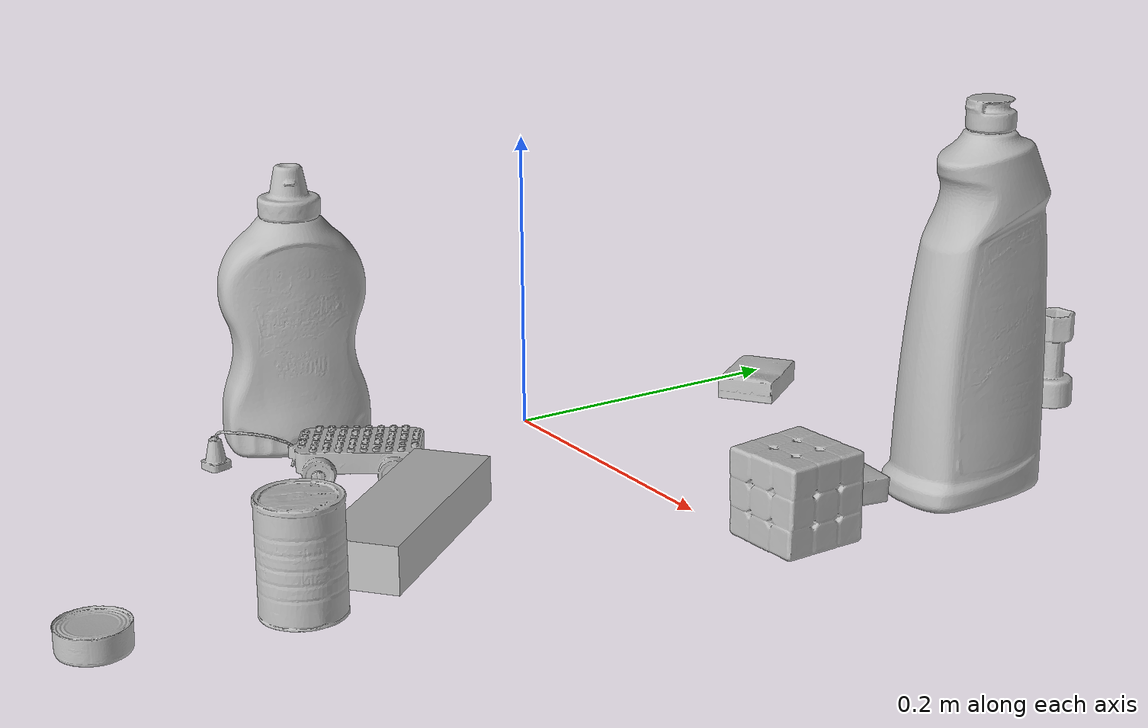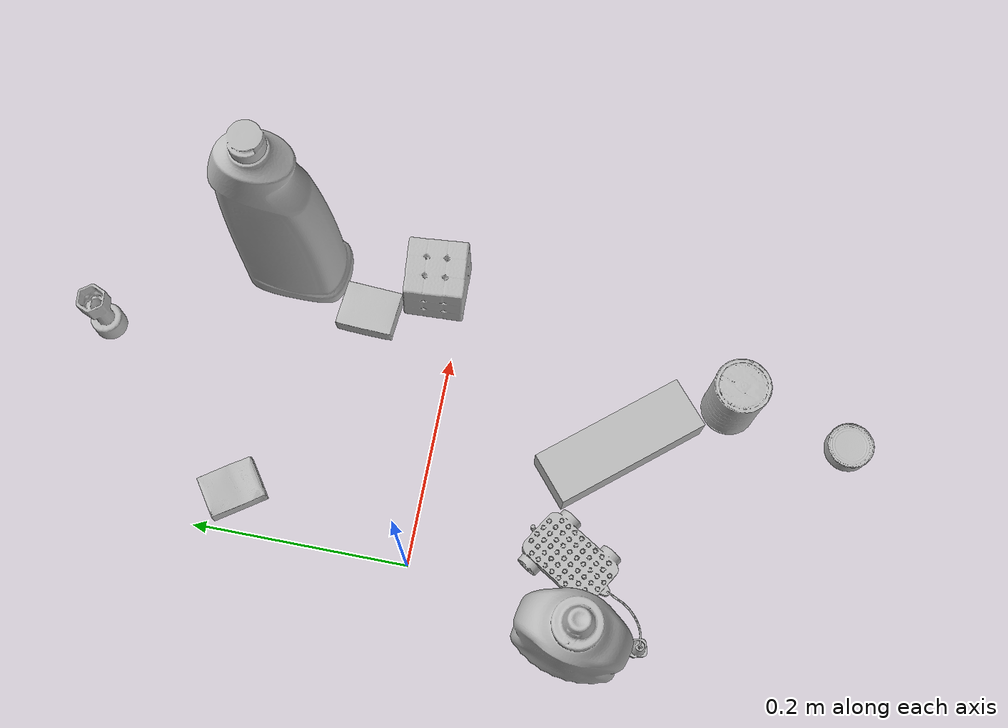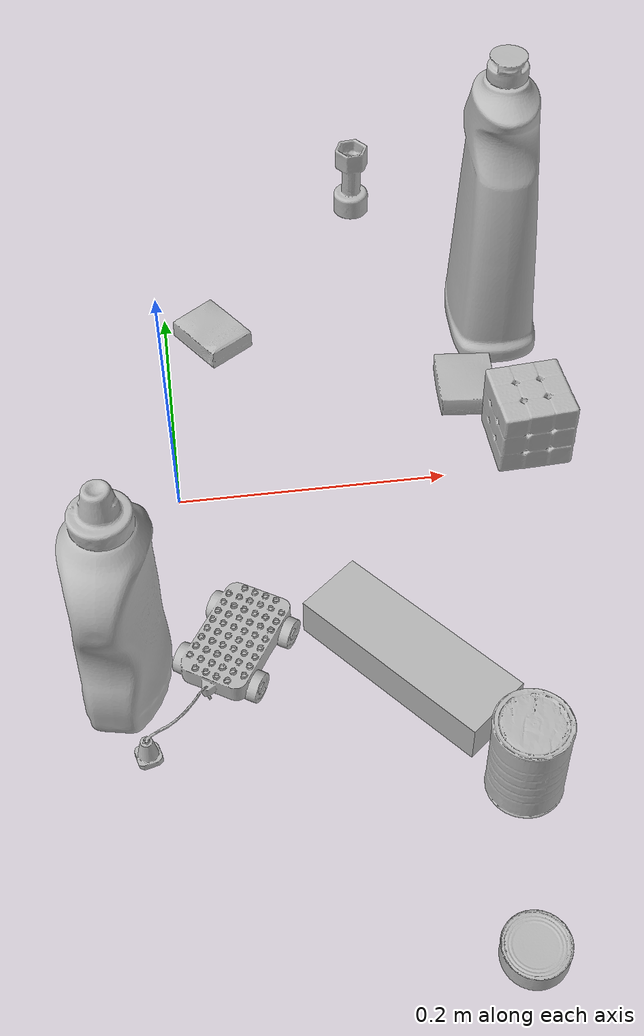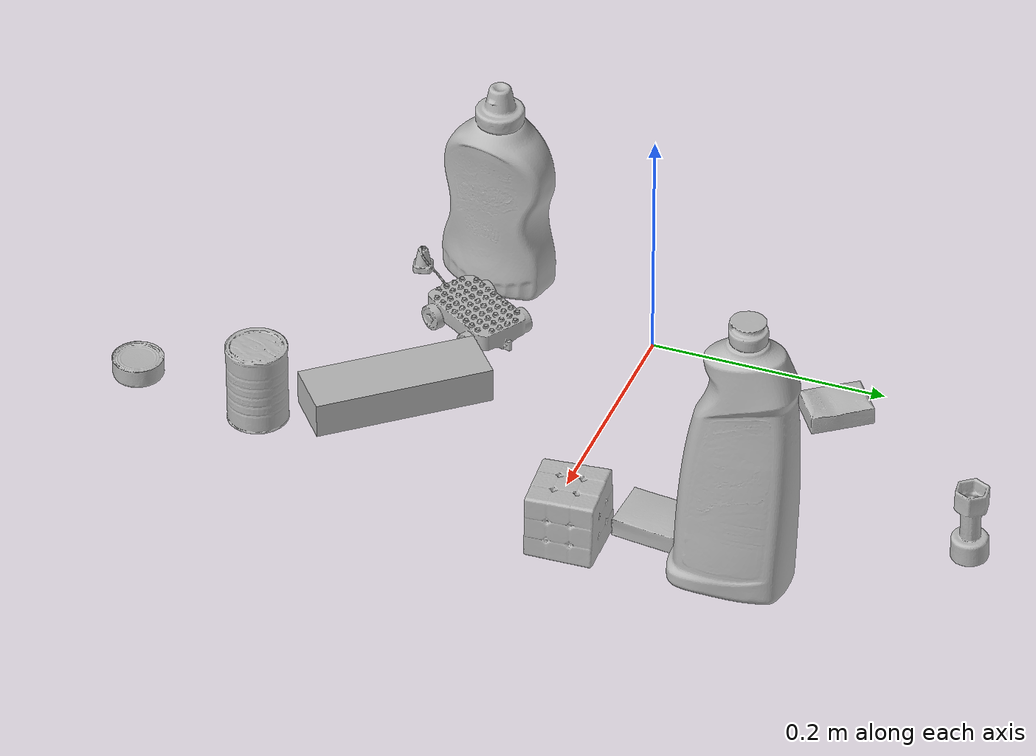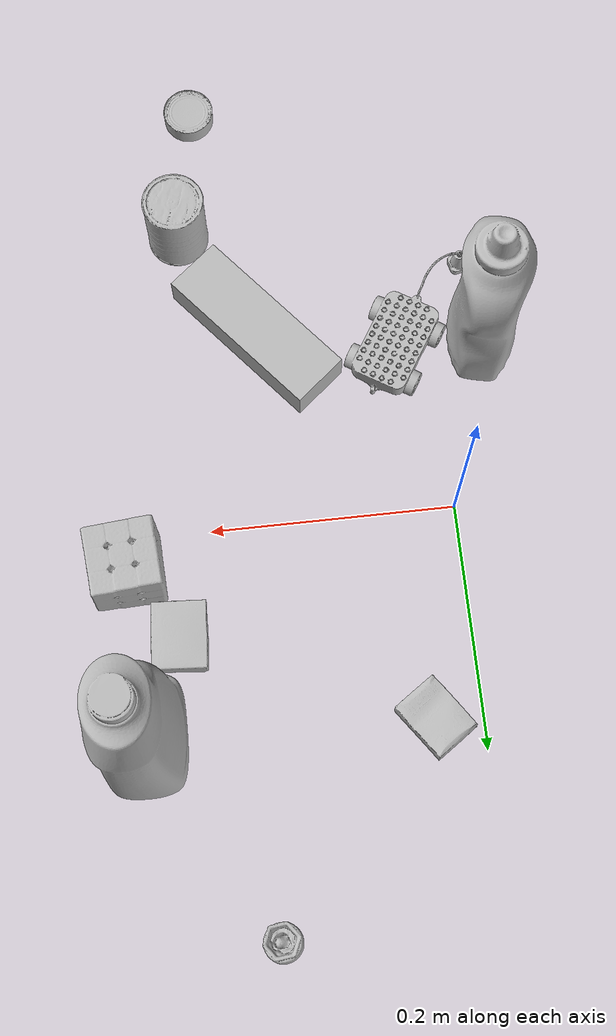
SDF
<sdf version="1.4">
  <world name="default">
    <light name="light1" type="point">
      <pose>0 0 1 0 0 0</pose>
      <diffuse>3 3 3 1</diffuse>
      <specular>3 3 3 1</specular>
    </light>
    <light name="light2" type="point">
      <pose>0 0.5 2 0 0 0</pose>
      <diffuse>1 1 1 1</diffuse>
      <specular>1 1 1 1</specular>
    </light>
    <light name="light3" type="point">
      <pose>0 0.5 2 0 0 0</pose>
      <diffuse>3 3 3 1</diffuse>
      <specular>3 3 3 1</specular>
    </light>
    <scene>
      <ambient>0.7 0.7 0.7</ambient>
    </scene>
    <model name="bottle1">
      <link name="link_bottle1">
        <collision name="default">
          <geometry>
            <mesh>
              <uri>model://mustard_bottle/collision_meshes/collision.obj</uri>
              <scale>1.0 1.0 1.0</scale>
            </mesh>
          </geometry>
          <surface>
            <friction>
              <ode>
                <mu>0.5</mu>
                <mu2>0.5</mu2>
              </ode>
            </friction>
          <contact>
        <ode>
            <max_vel>0</max_vel>
            <min_depth>0.0001</min_depth>
            <kp>1e8</kp>
        </ode>
    </contact></surface>
        </collision>
        <visual name="default">
          <geometry>
            <mesh>
              <uri>model://mustard_bottle/visual_meshes/visual.dae</uri>
              <scale>1.0 1.0 1.0</scale>
            </mesh>
          </geometry>
        </visual>
        <inertial>
          <mass>0.7866348028182983</mass>
          <pose>0.0005032454500906169 -0.00015647400869056582 -0.0174757931381464 0.00041823249995057767 0.0009465787698991903 0.02485370186883952</pose>
          <inertia>
            <ixx>0.0021843775</ixx>
            <iyy>0.0019166061</iyy>
            <izz>0.0005756938</izz>
            <ixy>0</ixy>
            <ixz>0</ixz>
            <iyz>0</iyz>
          </inertia>
        </inertial>
      </link>
      <pose>-0.043491773307323456 -0.15065155923366547 0.09583088755607605 -0.012048007900495237 -0.004896947182216766 -0.23118205857435112</pose>
    </model>
    <model name="bottle2">
      <link name="link_bottle2">
        <collision name="default">
          <geometry>
            <mesh>
              <uri>model://bleach_cleanser/collision_meshes/collision.obj</uri>
              <scale>1.0 1.0 1.0</scale>
            </mesh>
          </geometry>
          <surface>
            <friction>
              <ode>
                <mu>0.5</mu>
                <mu2>0.5</mu2>
              </ode>
            </friction>
          <contact>
        <ode>
            <max_vel>0</max_vel>
            <min_depth>0.0001</min_depth>
            <kp>1e8</kp>
        </ode>
    </contact></surface>
        </collision>
        <visual name="default">
          <geometry>
            <mesh>
              <uri>model://bleach_cleanser/visual_meshes/visual.dae</uri>
              <scale>1.0 1.0 1.0</scale>
            </mesh>
          </geometry>
        </visual>
        <inertial>
          <mass>1.5776710510253906</mass>
          <pose>0.00012193183647468686 0.003783883061259985 -0.02442161552608013 -0.07381671362264838 0.0004201168949340897 -0.006875045535038288</pose>
          <inertia>
            <ixx>0.007678755</ixx>
            <iyy>0.0071554743</iyy>
            <izz>0.0013128674</izz>
            <ixy>0</ixy>
            <ixz>0</ixz>
            <iyz>0</iyz>
          </inertia>
        </inertial>
      </link>
      <pose>0.26585686206817627 0.16293004155158997 0.12578417360782623 -0.0001997359533779914 1.6737407752938784e-05 0.011374051107111476</pose>
    </model>
    <model name="toy1">
      <link name="link_toy1">
        <collision name="default">
          <geometry>
            <mesh>
              <uri>model://g_lego_duplo/collision_meshes/collision.obj</uri>
              <scale>0.5 0.5 0.5</scale>
            </mesh>
          </geometry>
          <surface>
            <friction>
              <ode>
                <mu>0.5</mu>
                <mu2>0.5</mu2>
              </ode>
            </friction>
          <contact>
        <ode>
            <max_vel>0</max_vel>
            <min_depth>0.0001</min_depth>
            <kp>1e8</kp>
        </ode>
    </contact></surface>
        </collision>
        <visual name="default">
          <geometry>
            <mesh>
              <uri>model://g_lego_duplo/visual_meshes/visual.dae</uri>
              <scale>0.5 0.5 0.5</scale>
            </mesh>
          </geometry>
        </visual>
        <inertial>
          <mass>0.06580430269241333</mass>
          <pose>-0.025023844093084335 0.0008777321199886501 0.0019403373589739203 0.010962977320182745 0.038108249742412996 -0.09653031078073558</pose>
          <inertia>
            <ixx>2.3837789e-05</ixx>
            <iyy>7.206929e-05</iyy>
            <izz>9.016138e-05</izz>
            <ixy>0</ixy>
            <ixz>0</ixz>
            <iyz>0</iyz>
          </inertia>
        </inertial>
      </link>
      <pose>0.013763866387307644 -0.16681678593158722 0.014971824362874031 -0.0001739010062999382 -0.003706401360851459 -2.133004664217744</pose>
    </model>
    <model name="toy2">
      <link name="link_toy2">
        <collision name="default">
          <geometry>
            <mesh>
              <uri>model://c_toy_airplane/collision_meshes/collision.obj</uri>
              <scale>1.0 1.0 1.0</scale>
            </mesh>
          </geometry>
          <surface>
            <friction>
              <ode>
                <mu>0.5</mu>
                <mu2>0.5</mu2>
              </ode>
            </friction>
          <contact>
        <ode>
            <max_vel>0</max_vel>
            <min_depth>0.0001</min_depth>
            <kp>1e8</kp>
        </ode>
    </contact></surface>
        </collision>
        <visual name="default">
          <geometry>
            <mesh>
              <uri>model://c_toy_airplane/visual_meshes/visual.dae</uri>
              <scale>1.0 1.0 1.0</scale>
            </mesh>
          </geometry>
        </visual>
        <inertial>
          <mass>0.012545601464807987</mass>
          <pose>-0.00023024262918625027 -4.4310368707556336e-07 -0.0060805282555520535 -0.006192226732466636 -0.01679790977646328 0.7654621556572541</pose>
          <inertia>
            <ixx>5.760684e-06</ixx>
            <iyy>5.744425e-06</iyy>
            <izz>1.3524945e-06</izz>
            <ixy>0</ixy>
            <ixz>0</ixz>
            <iyz>0</iyz>
          </inertia>
        </inertial>
      </link>
      <pose>0.17423374950885773 0.3279401361942291 0.03351213410496712 -0.00011028320190297424 9.279422261265514e-05 -2.730312685081734</pose>
    </model>
    <model name="can1">
      <link name="link_can1">
        <collision name="default">
          <geometry>
            <mesh>
              <uri>model://tuna_fish_can/collision_meshes/collision.obj</uri>
              <scale>0.5 0.5 0.5</scale>
            </mesh>
          </geometry>
          <surface>
            <friction>
              <ode>
                <mu>0.5</mu>
                <mu2>0.5</mu2>
              </ode>
            </friction>
          <contact>
        <ode>
            <max_vel>0</max_vel>
            <min_depth>0.0001</min_depth>
            <kp>1e8</kp>
        </ode>
    </contact></surface>
        </collision>
        <visual name="default">
          <geometry>
            <mesh>
              <uri>model://tuna_fish_can/visual_meshes/visual.dae</uri>
              <scale>0.5 0.5 0.5</scale>
            </mesh>
          </geometry>
        </visual>
        <inertial>
          <mass>0.0216250978410244</mass>
          <pose>-2.036200021393597e-05 -7.256498065544292e-06 -0.0005269024986773729 -0.0017944779234091367 0.00017161663308651613 0.24053681665098822</pose>
          <inertia>
            <ixx>2.923745e-06</ixx>
            <iyy>2.9115588e-06</iyy>
            <izz>5.002946e-06</izz>
            <ixy>0</ixy>
            <ixz>0</ixz>
            <iyz>0</iyz>
          </inertia>
        </inertial>
      </link>
      <pose>0.18480494618415833 -0.3785318434238434 0.008520000614225864 -1.8511080791469576e-08 -2.628761066683975e-08 1.33821786086828</pose>
    </model>
    <model name="can2">
      <link name="link_can2">
        <collision name="default">
          <geometry>
            <mesh>
              <uri>model://master_chef_can/collision_meshes/collision.obj</uri>
              <scale>0.5 0.5 0.5</scale>
            </mesh>
          </geometry>
          <surface>
            <friction>
              <ode>
                <mu>0.5</mu>
                <mu2>0.5</mu2>
              </ode>
            </friction>
          <contact>
        <ode>
            <max_vel>0</max_vel>
            <min_depth>0.0001</min_depth>
            <kp>1e8</kp>
        </ode>
    </contact></surface>
        </collision>
        <visual name="default">
          <geometry>
            <mesh>
              <uri>model://master_chef_can/visual_meshes/visual.dae</uri>
              <scale>0.5 0.5 0.5</scale>
            </mesh>
          </geometry>
        </visual>
        <inertial>
          <mass>0.16779577732086182</mass>
          <pose>-4.661964703700505e-05 1.3926845099376806e-07 -5.080012488178909e-05 -0.001799515621871614 0.0006479176547847844 -0.610266079213139</pose>
          <inertia>
            <ixx>9.848473e-05</ixx>
            <iyy>9.77599e-05</iyy>
            <izz>5.442035e-05</izz>
            <ixy>0</ixy>
            <ixz>0</ixz>
            <iyz>0</iyz>
          </inertia>
        </inertial>
      </link>
      <pose>0.20356802642345428 -0.2652052640914917 0.03530198335647583 -1.1825477984346787e-06 -8.620163613019154e-07 1.7265271477570725</pose>
    </model>
    <model name="box1">
      <link name="link_box1">
        <collision name="default">
          <geometry>
            <mesh>
              <uri>model://rubiks_cube/collision_meshes/collision.obj</uri>
              <scale>1.0 1.0 1.0</scale>
            </mesh>
          </geometry>
          <surface>
            <friction>
              <ode>
                <mu>0.5</mu>
                <mu2>0.5</mu2>
              </ode>
            </friction>
          <contact>
        <ode>
            <max_vel>0</max_vel>
            <min_depth>0.0001</min_depth>
            <kp>1e8</kp>
        </ode>
    </contact></surface>
        </collision>
        <visual name="default">
          <geometry>
            <mesh>
              <uri>model://rubiks_cube/visual_meshes/visual.dae</uri>
              <scale>1.0 1.0 1.0</scale>
            </mesh>
          </geometry>
        </visual>
        <inertial>
          <mass>0.232398122549057</mass>
          <pose>2.6721041649580002e-05 5.256967051536776e-05 -7.264316082000732e-06 -0.05467303663832053 -0.0981402329670775 -0.034454960240128486</pose>
          <inertia>
            <ixx>0.00012841556</ixx>
            <iyy>0.00012781669</iyy>
            <izz>0.00012947968</izz>
            <ixy>0</ixy>
            <ixz>0</ixz>
            <iyz>0</iyz>
          </inertia>
        </inertial>
      </link>
      <pose>0.2689465880393982 0.026638329029083252 0.02867897041141987 -2.560505667992258e-06 -8.857691992739117e-07 0.07472774317942303</pose>
    </model>
    <model name="box2">
      <link name="link_box2">
        <collision name="default">
          <geometry>
            <mesh>
              <uri>model://jenga/collision_meshes/collision.obj</uri>
              <scale>1.0 1.0 1.0</scale>
            </mesh>
          </geometry>
          <surface>
            <friction>
              <ode>
                <mu>0.5</mu>
                <mu2>0.5</mu2>
              </ode>
            </friction>
          <contact>
        <ode>
            <max_vel>0</max_vel>
            <min_depth>0.0001</min_depth>
            <kp>1e8</kp>
        </ode>
    </contact></surface>
        </collision>
        <visual name="default">
          <geometry>
            <mesh>
              <uri>model://jenga/visual_meshes/visual.dae</uri>
              <scale>1.0 1.0 1.0</scale>
            </mesh>
          </geometry>
        </visual>
        <inertial>
          <mass>0.2088489830493927</mass>
          <pose>-2.502855807051674e-07 -0.0001025000965455547 -4.092339804628864e-05 0.0 -7.342154049184251e-07 0.0</pose>
          <inertia>
            <ixx>5.7793575e-05</ixx>
            <iyy>0.00039160773</iyy>
            <izz>0.00041807455</izz>
            <ixy>0</ixy>
            <ixz>0</ixz>
            <iyz>0</iyz>
          </inertia>
        </inertial>
      </link>
      <pose>0.1454526036977768 -0.16892161965370178 0.014999997802078724 5.3056606103644124e-09 -1.315112879200337e-09 2.2657847495441126</pose>
    </model>
    <model name="box3">
      <link name="link_box3">
        <collision name="default">
          <geometry>
            <mesh>
              <uri>model://cracker_box/collision_meshes/collision.obj</uri>
              <scale>0.25 0.25 0.25</scale>
            </mesh>
          </geometry>
          <surface>
            <friction>
              <ode>
                <mu>0.5</mu>
                <mu2>0.5</mu2>
              </ode>
            </friction>
          <contact>
        <ode>
            <max_vel>0</max_vel>
            <min_depth>0.0001</min_depth>
            <kp>1e8</kp>
        </ode>
    </contact></surface>
        </collision>
        <visual name="default">
          <geometry>
            <mesh>
              <uri>model://cracker_box/visual_meshes/visual.dae</uri>
              <scale>0.25 0.25 0.25</scale>
            </mesh>
          </geometry>
        </visual>
        <inertial>
          <mass>0.039105094969272614</mass>
          <pose>0.00023660340229980648 6.358561222441494e-05 -0.00042573834070935845 -0.0003162078884583708 -0.011106488668689832 0.0025467950032832675</pose>
          <inertia>
            <ixx>6.216619e-06</ixx>
            <iyy>1.0264859e-05</iyy>
            <izz>1.4648894e-05</izz>
            <ixy>0</ixy>
            <ixz>0</ixz>
            <iyz>0</iyz>
          </inertia>
        </inertial>
      </link>
      <pose>0.038146816194057465 0.1712321639060974 0.009120447561144829 -0.011788184926607062 -0.007367251931469025 2.177276686780096</pose>
    </model>
    <model name="box4">
      <link name="link_box4">
        <collision name="default">
          <geometry>
            <mesh>
              <uri>model://pudding_box/collision_meshes/collision.obj</uri>
              <scale>0.5 0.5 0.5</scale>
            </mesh>
          </geometry>
          <surface>
            <friction>
              <ode>
                <mu>0.5</mu>
                <mu2>0.5</mu2>
              </ode>
            </friction>
          <contact>
        <ode>
            <max_vel>0</max_vel>
            <min_depth>0.0001</min_depth>
            <kp>1e8</kp>
        </ode>
    </contact></surface>
        </collision>
        <visual name="default">
          <geometry>
            <mesh>
              <uri>model://pudding_box/visual_meshes/visual.dae</uri>
              <scale>0.5 0.5 0.5</scale>
            </mesh>
          </geometry>
        </visual>
        <inertial>
          <mass>0.03813362866640091</mass>
          <pose>0.00024474109522998333 0.00040339428232982755 -0.0002594413817860186 0.005213101815861678 -0.006603796390356506 0.020079825165494957</pose>
          <inertia>
            <ixx>1.0777026e-05</ixx>
            <iyy>7.25086e-06</iyy>
            <izz>1.5915095e-05</izz>
            <ixy>0</ixy>
            <ixz>0</ixz>
            <iyz>0</iyz>
          </inertia>
        </inertial>
      </link>
      <pose>0.23205427825450897 0.08549804240465164 0.009862905368208885 0.022348674031599992 -0.011391655011423142 3.0661781868168565</pose>
    </model>
  <physics type="ode">
      <max_contacts>50</max_contacts>
      <ode>
        <solver>
          <type>quick</type>
          <iters>75</iters>
        </solver>
        <constraints>
          <contact_max_correcting_vel>0</contact_max_correcting_vel>
          <contact_surface_layer>0</contact_surface_layer>
        </constraints>
      </ode>
    </physics></world>
</sdf>
